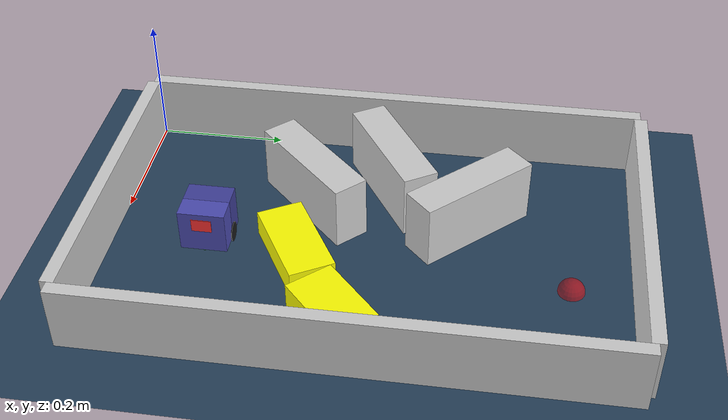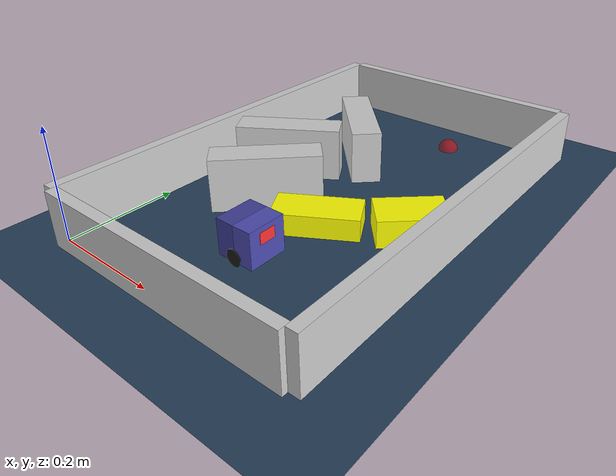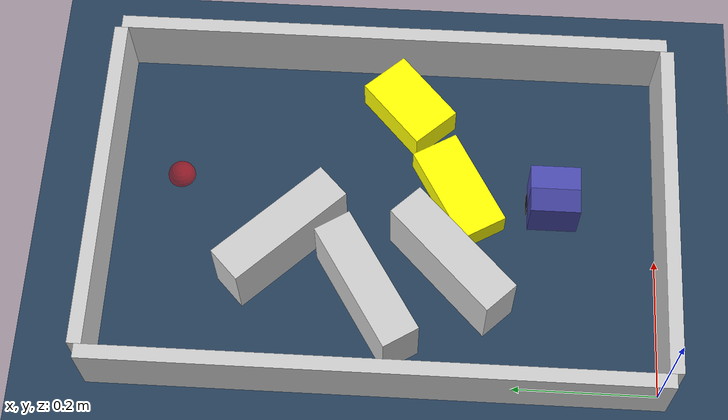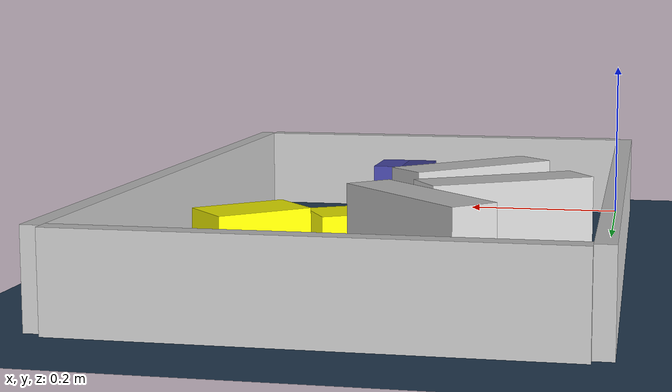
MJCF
<?xml version='1.0' encoding='utf-8'?>
<mujoco model="real_buildable">
  <compiler angle="degree" />
  <option timestep="0.002" integrator="implicitfast" iterations="100" cone="elliptic" />
  <default>
    <geom density="1" />
  </default>
  <asset>
    <texture builtin="gradient" height="3072" rgb1="0.3 0.5 0.7" rgb2="0 0 0" type="skybox" width="512" />
    <texture builtin="checker" height="300" mark="edge" markrgb="0.8 0.8 0.8" name="groundplane" rgb1="0.2 0.3 0.4" rgb2="0.1 0.2 0.3" type="2d" width="300" />
    <material name="groundplane" reflectance="0.2" texrepeat="5 5" texture="groundplane" texuniform="true" />
  </asset>
  <worldbody>
    <light dir="0 0 -1" directional="true" pos="0 0 1.5" />
    <geom name="floor" type="plane" condim="4" friction="0.5 0.005 0.001" material="groundplane" size="0 0 0.05" />
    <body name="walls">
      <geom name="wall_boundary_left" type="box" condim="4" friction="1.0 0.005 0.0001" rgba="0.8 0.8 0.8 1" pos="-0.010000 0.387500 0.050000" euler="0 0 0.000000" size="0.010000 0.397500 0.050000" />
      <geom name="wall_boundary_right" type="box" condim="4" friction="1.0 0.005 0.0001" rgba="0.8 0.8 0.8 1" pos="0.500000 0.387500 0.050000" euler="0 0 0.000000" size="0.010000 0.397500 0.050000" />
      <geom name="wall_boundary_bottom" type="box" condim="4" friction="1.0 0.005 0.0001" rgba="0.8 0.8 0.8 1" pos="0.245000 -0.010000 0.050000" euler="0 0 0.000000" size="0.245000 0.010000 0.050000" />
      <geom name="wall_boundary_top" type="box" condim="4" friction="1.0 0.005 0.0001" rgba="0.8 0.8 0.8 1" pos="0.245000 0.785000 0.050000" euler="0 0 0.000000" size="0.245000 0.010000 0.050000" />
      <geom name="wall_inner_1" type="box" condim="4" friction="1.0 0.005 0.0001" rgba="0.8 0.8 0.8 1" pos="0.189716 0.528845 0.050000" euler="0 0 -46.209717" size="0.097500 0.027500 0.050000" />
      <geom name="wall_inner_2" type="box" condim="4" friction="1.0 0.005 0.0001" rgba="0.8 0.8 0.8 1" pos="0.164248 0.289585 0.050000" euler="0 0 44.272958" size="0.097500 0.027500 0.050000" />
      <geom name="wall_inner_3" type="box" condim="4" friction="1.0 0.005 0.0001" rgba="0.8 0.8 0.8 1" pos="0.113959 0.405373 0.050000" euler="0 0 31.908330" size="0.097500 0.027500 0.050000" />
    </body>
    <body name="car" pos="0.27050602716944816 0.14775333064320098 0.01">
      <freejoint name="car_freejoint" />
      <inertial pos="0 0 0.0375" mass="0.35" diaginertia="0.000266 0.000266 0.000286" />
      <geom name="front_chassis_collision" type="box" pos="0.0175 0 0.0375" size="0.0175 0.035 0.0325" rgba="0.3 0.3 0.7 1" />
      <geom name="rear_chassis_collision" type="box" pos="-0.0175 0 0.0375" size="0.0175 0.035 0.0325" rgba="0.25 0.25 0.6 1" />
      <geom name="front_marker" type="box" pos="0.034 0 0.0505" size="0.002 0.015 0.01" rgba="1 0.2 0.2 1" contype="0" conaffinity="0" />
      <body name="rear_support_body" pos="-0.03 0 0.0025">
        <joint name="rear_caster_joint" type="ball" damping="0.0001" />
        <inertial pos="0 0 0" mass="0.025" diaginertia="0.000001 0.000001 0.000001" />
        <geom name="rear_support" type="sphere" pos="0 0 0" size="0.0025" friction="0 0 0" rgba="0.7 0.1 0.1 1" />
      </body>
      <body name="front_support_body" pos="0.03 0 0.0025">
        <joint name="front_caster_joint" type="ball" damping="0.0001" />
        <inertial pos="0 0 0" mass="0.025" diaginertia="0.000001 0.000001 0.000001" />
        <geom name="front_support" type="sphere" pos="0 0 0" size="0.0025" friction="0 0 0" rgba="0.1 0.7 0.1 1" />
      </body>
      <body name="left_wheel" pos="0 0.0375 0.015">
        <inertial pos="0 0 0" mass="0.05" diaginertia="0.000003 0.000006 0.000003" />
        <joint name="left_wheel_joint" type="hinge" axis="0 1 0" damping="0.01" armature="0.0001" />
        <geom name="left_wheel_collision" type="cylinder" size="0.015 0.0005" euler="90 0 0" rgba="0.1 0.1 0.1 1" />
      </body>
      <body name="right_wheel" pos="0 -0.0375 0.015">
        <inertial pos="0 0 0" mass="0.05" diaginertia="0.000003 0.000006 0.000003" />
        <joint name="right_wheel_joint" type="hinge" axis="0 1 0" damping="0.01" armature="0.0001" />
        <geom name="right_wheel_collision" type="cylinder" size="0.015 0.0005" euler="90 0 0" rgba="0.1 0.1 0.1 1" />
      </body>
    </body>
    <body name="obstacle_0_movable">
      <geom name="obstacle_0_movable" condim="4" pos="0.287609 0.282472 0.020000" euler="0 0 119.955238" friction="1 0.005 0.0001" rgba="1 1 0 1" size="0.035000 0.075000 0.020000" type="box" mass="0.1" />
      <joint type="free" />
    </body>
    <body name="obstacle_1_movable">
      <geom name="obstacle_1_movable" condim="4" pos="0.419619 0.358551 0.025000" euler="0 0 132.296497" friction="1 0.005 0.0001" rgba="1 1 0 1" size="0.037500 0.060000 0.025000" type="box" mass="0.1" />
      <joint type="free" />
    </body>
    <site name="goal" type="sphere" pos="0.303841 0.687209 0.0" size="0.02" rgba="1 0 0 0.5" />
  </worldbody>
  <actuator>
    <velocity name="left_wheel_drive" joint="left_wheel_joint" ctrlrange="-25 25" kv="0.75" forcerange="-0.5 0.5" />
    <velocity name="right_wheel_drive" joint="right_wheel_joint" ctrlrange="-25 25" kv="0.75" forcerange="-0.5 0.5" />
  </actuator>
</mujoco>
